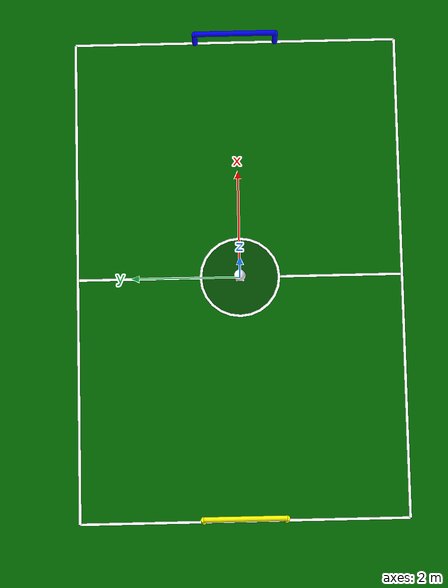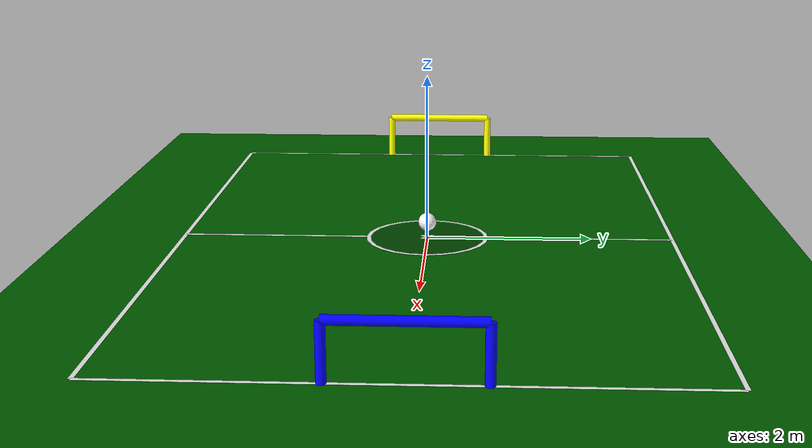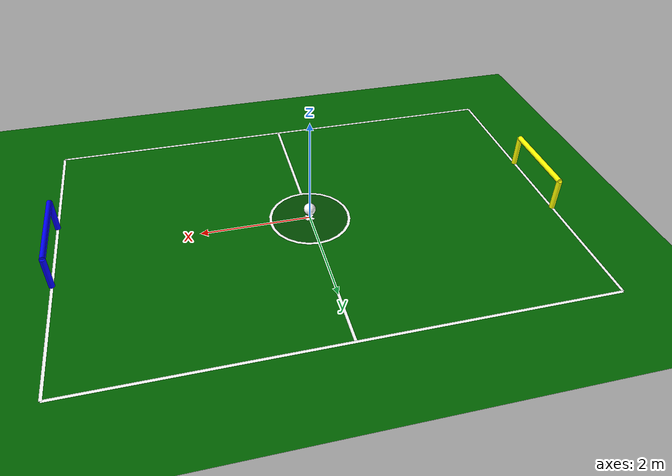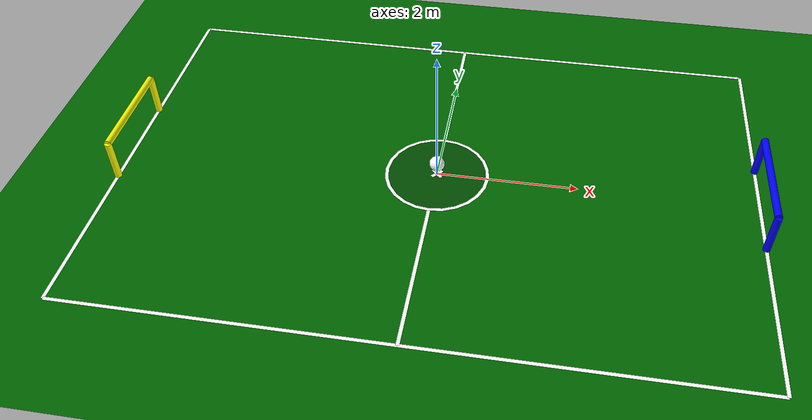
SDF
<?xml version="1.0" ?>
<sdf version="1.6">
  <world name="robocup_field">
    <include><uri>model://sun</uri></include>

    <plugin name="gazebo_ros_state" filename="libgazebo_ros_state.so">
      <ros>
        <namespace>/gazebo</namespace>
        <argument>model_states:=model_states</argument>
      </ros>
      <update_rate>50.0</update_rate>
    </plugin>

    <model name="dark_green_floor">
      <static>true</static>
      <link name="link">
        <collision name="collision">
          <geometry><plane><normal>0 0 1</normal><size>12 9</size></plane></geometry>
          <surface>
            <friction>
              <ode>
                <mu>0.3</mu>
                <mu2>0.3</mu2>
              </ode>
            </friction>
          </surface>
        </collision>
        <visual name="visual">
          <geometry><plane><normal>0 0 1</normal><size>12 9</size></plane></geometry>
          <material>
            <ambient>0.0 0.3 0.0 1</ambient> <diffuse>0.0 0.4 0.0 1</diffuse>
            <specular>0.1 0.1 0.1 1</specular>
          </material>
        </visual>
      </link>
    </model>

    <model name="center_circle_white">
      <static>true</static><pose>0 0 0.002 0 0 0</pose>
      <link name="link"><visual name="visual"><geometry><cylinder><radius>0.75</radius><length>0.002</length></cylinder></geometry><material><ambient>1 1 1 1</ambient></material></visual></link>
    </model>
    <model name="center_circle_mask">
      <static>true</static><pose>0 0 0.003 0 0 0</pose>
      <link name="link"><visual name="visual"><geometry><cylinder><radius>0.70</radius><length>0.002</length></cylinder></geometry><material><ambient>0.0 0.3 0.0 1</ambient></material></visual></link>
    </model>
    <model name="center_x_1">
      <static>true</static> <pose>0 0 0.004 0 0 0.785</pose>
      <link name="l"><visual name="v"><geometry><box><size>0.2 0.05 0.001</size></box></geometry><material><ambient>1 1 1 1</ambient></material></visual></link>
    </model>
    <model name="center_x_2">
      <static>true</static> <pose>0 0 0.004 0 0 -0.785</pose>
      <link name="l"><visual name="v"><geometry><box><size>0.2 0.05 0.001</size></box></geometry><material><ambient>1 1 1 1</ambient></material></visual></link>
    </model>
    <model name="line_top">
      <static>true</static><pose>0 3.0 0.001 0 0 0</pose>
      <link name="l"><visual name="v"><geometry><box><size>9.0 0.05 0.001</size></box></geometry><material><ambient>1 1 1 1</ambient></material></visual></link>
    </model>
    <model name="line_bottom">
      <static>true</static><pose>0 -3.0 0.001 0 0 0</pose>
      <link name="l"><visual name="v"><geometry><box><size>9.0 0.05 0.001</size></box></geometry><material><ambient>1 1 1 1</ambient></material></visual></link>
    </model>
    <model name="line_left">
      <static>true</static><pose>-4.5 0 0.001 0 0 0</pose>
      <link name="l"><visual name="v"><geometry><box><size>0.05 6.0 0.001</size></box></geometry><material><ambient>1 1 1 1</ambient></material></visual></link>
    </model>
    <model name="line_right">
      <static>true</static><pose>4.5 0 0.001 0 0 0</pose>
      <link name="l"><visual name="v"><geometry><box><size>0.05 6.0 0.001</size></box></geometry><material><ambient>1 1 1 1</ambient></material></visual></link>
    </model>
    <model name="line_center">
      <static>true</static><pose>0 0 0.001 0 0 0</pose>
      <link name="l"><visual name="v"><geometry><box><size>0.05 6.0 0.001</size></box></geometry><material><ambient>1 1 1 1</ambient></material></visual></link>
    </model>

    <model name="goal_left">
      <static>true</static><pose>-4.5 0 0 0 0 0</pose>
      <link name="posts">
        <visual name="lp"><pose>0 0.75 0.3 0 0 0</pose><geometry><cylinder><radius>0.05</radius><length>0.6</length></cylinder></geometry><material><ambient>1 1 0 1</ambient></material></visual>
        <visual name="rp"><pose>0 -0.75 0.3 0 0 0</pose><geometry><cylinder><radius>0.05</radius><length>0.6</length></cylinder></geometry><material><ambient>1 1 0 1</ambient></material></visual>
        <visual name="cb"><pose>0 0 0.6 1.5707 0 0</pose><geometry><cylinder><radius>0.05</radius><length>1.5</length></cylinder></geometry><material><ambient>1 1 0 1</ambient></material></visual>
      </link>
    </model>
    <model name="goal_right">
      <static>true</static><pose>4.5 0 0 0 0 0</pose>
      <link name="posts">
        <visual name="lp"><pose>0 0.75 0.3 0 0 0</pose><geometry><cylinder><radius>0.05</radius><length>0.6</length></cylinder></geometry><material><ambient>0 0 1 1</ambient></material></visual>
        <visual name="rp"><pose>0 -0.75 0.3 0 0 0</pose><geometry><cylinder><radius>0.05</radius><length>0.6</length></cylinder></geometry><material><ambient>0 0 1 1</ambient></material></visual>
        <visual name="cb"><pose>0 0 0.6 1.5707 0 0</pose><geometry><cylinder><radius>0.05</radius><length>1.5</length></cylinder></geometry><material><ambient>0 0 1 1</ambient></material></visual>
      </link>
    </model>

    <model name="soccer_ball">
      <static>false</static>
      <pose>0 0 0.2 0 0 0</pose>
      <link name="link">

        <velocity_decay>
          <linear>0.002</linear>
          <angular>0.002</angular>
        </velocity_decay>

        <inertial>
          <mass>0.4</mass>
          <inertia>
            <ixx>0.002</ixx><ixy>0</ixy><ixz>0</ixz>
            <iyy>0.002</iyy><iyz>0</iyz><izz>0.002</izz>
          </inertia>
        </inertial>

        <collision name="ball_collision">
          <geometry>
            <sphere><radius>0.11</radius></sphere>
          </geometry>
          <surface>
            <contact>
              <ode>
                <kp>50000.0</kp>
                <kd>1.0</kd>
                <max_vel>20.0</max_vel>
                <min_depth>0.01</min_depth>
              </ode>
              <collide_bitmask>0xffff</collide_bitmask>
            </contact>
            <bounce>
              <restitution_coefficient>1.0</restitution_coefficient>
              <threshold>0.0</threshold>
            </bounce>
            <friction>
              <ode>
                <mu>0.01</mu>
                <mu2>0.01</mu2>
              </ode>
            </friction>
          </surface>
        </collision>

        <visual name="visual">
          <geometry><sphere><radius>0.11</radius></sphere></geometry>
          <material><ambient>1 1 1 1</ambient><diffuse>1 1 1 1</diffuse></material>
        </visual>
      </link>
    </model>

  </world>
</sdf>
